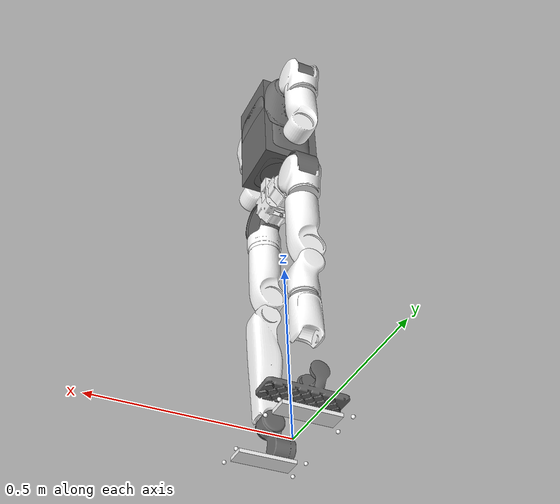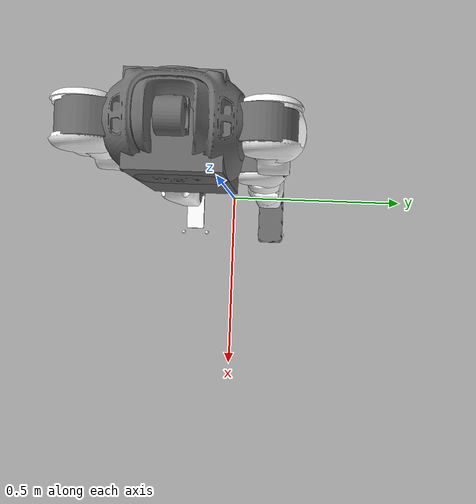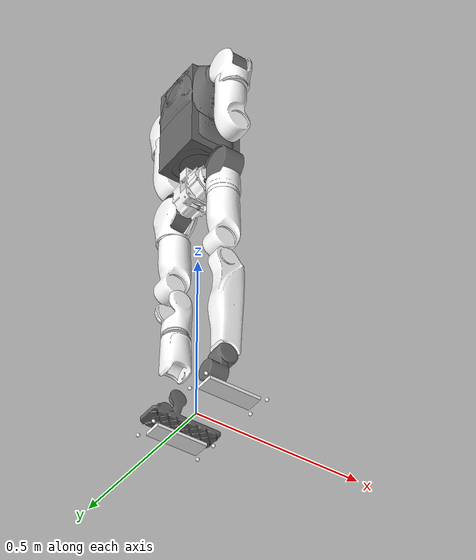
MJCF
<mujoco model="E1_12dof">
  <compiler angle="radian" meshdir="./meshes/"/>
  <statistic meansize="0.144785" extent="1.23314" center="0.025392 2.0634e-05 -0.245975"/>
  <default>
    <joint damping="0.1" armature="0.01" frictionloss="0.3"/>
  </default>
  <asset>
    <mesh name="pelvis" file="pelvis.STL"/>
    <mesh name="left_hip_pitch_link" file="left_hip_pitch_link.STL"/>
    <mesh name="left_hip_roll_link" file="left_hip_roll_link.STL"/>
    <mesh name="left_hip_yaw_link" file="left_hip_yaw_link.STL"/>
    <mesh name="left_knee_link" file="left_knee_link.STL"/>
    <mesh name="left_ankle_pitch_link" file="left_ankle_pitch_link.STL"/>
    <mesh name="right_hip_pitch_link" file="right_hip_pitch_link.STL"/>
    <mesh name="right_hip_roll_link" file="right_hip_roll_link.STL"/>
    <mesh name="right_hip_yaw_link" file="right_hip_yaw_link.STL"/>
    <mesh name="right_knee_link" file="right_knee_link.STL"/>
    <mesh name="right_ankle_pitch_link" file="right_ankle_pitch_link.STL"/>
    <mesh name="torso_link" file="torso_link.STL"/>
    <mesh name="left_shoulder_pitch_link" file="left_shoulder_pitch_link.STL"/>
    <mesh name="left_shoulder_roll_link" file="left_shoulder_roll_link.STL"/>
    <mesh name="left_shoulder_yaw_link" file="left_shoulder_yaw_link.STL"/>
    <mesh name="right_shoulder_pitch_link" file="right_shoulder_pitch_link.STL"/>
    <mesh name="right_shoulder_roll_link" file="right_shoulder_roll_link.STL"/>
    <mesh name="right_shoulder_yaw_link" file="right_shoulder_yaw_link.STL"/>
  </asset>

  <worldbody>
    <body name="pelvis" pos="0 0 0.754">
      <inertial pos="-0.000783647 -0.000908128 0.220941" quat="0.999977 0.00448128 -0.00502837 -6.11387e-05" mass="13.832" diaginertia="0.307113 0.203414 0.123242"/>
      <joint name="floating_base_joint" type="free" limited="false" actuatorfrclimited="false"/>
      <geom type="mesh" contype="0" conaffinity="0" group="1" density="0" rgba="1 1 1 1" mesh="pelvis"/>
      <geom type="mesh" rgba="1 1 1 1" mesh="pelvis"/>
      <geom pos="0 0 0.111" quat="1 0 0 0" type="mesh" contype="0" conaffinity="0" group="1" density="0" rgba="0.419608 0.419608 0.419608 1" mesh="torso_link"/>
      <geom size="0.08 0.08 0.15" pos="0 0 0.241" type="box" rgba="0.419608 0.419608 0.419608 1"/>
      <geom pos="0 0.095 0.35" quat="1 0 0 0" type="mesh" contype="0" conaffinity="0" group="1" density="0" rgba="0.419608 0.419608 0.419608 1" mesh="left_shoulder_pitch_link"/>
      <geom pos="0 0.15 0.35" quat="1 0 0 0" type="mesh" contype="0" conaffinity="0" group="1" density="0" rgba="1 1 1 1" mesh="left_shoulder_roll_link"/>
      <geom pos="0 0.15 0.299" quat="1 0 0 0" type="mesh" contype="0" conaffinity="0" group="1" density="0" rgba="1 1 1 1" mesh="left_shoulder_yaw_link"/>
      <geom pos="0 -0.095 0.35" quat="1 0 0 0" type="mesh" contype="0" conaffinity="0" group="1" density="0" rgba="0.419608 0.419608 0.419608 1" mesh="right_shoulder_pitch_link"/>
      <geom pos="0 -0.15 0.35" quat="1 0 0 0" type="mesh" contype="0" conaffinity="0" group="1" density="0" rgba="1 1 1 1" mesh="right_shoulder_roll_link"/>
      <geom pos="0 -0.15 0.299" quat="1 0 0 0" type="mesh" contype="0" conaffinity="0" group="1" density="0" rgba="1 1 1 1" mesh="right_shoulder_yaw_link"/>
      <site name="imu" pos="0 0 -0.06"/>
      <body name="left_hip_pitch_link" pos="0 0.0575 0">
        <inertial pos="0.0192954 0.0308444 -0.00578934" quat="0.596098 0.717966 0.34423 -0.103431" mass="0.145" diaginertia="0.000127162 0.000104737 3.89609e-05"/>
        <joint name="left_hip_pitch_joint" pos="0 0 0" axis="0 1 0" range="-2.7053 2.7053" actuatorfrcrange="-60 60"/>
        <geom type="mesh" contype="0" conaffinity="0" group="1" density="0" rgba="0.419608 0.419608 0.419608 1" mesh="left_hip_pitch_link"/>
        <body name="left_hip_roll_link" pos="0 0.0575 -0.015">
          <inertial pos="-0.00147244 0.00041537 -0.0372145" quat="0.99892 0.00322789 0.0298082 0.035486" mass="1.39" diaginertia="0.0025721 0.00235517 0.0014478"/>
          <joint name="left_hip_roll_joint" pos="0 0 0" axis="1 0 0" range="-0.1745 2.618" actuatorfrcrange="-36 36"/>
          <geom type="mesh" contype="0" conaffinity="0" group="1" density="0" rgba="1 1 1 1" mesh="left_hip_roll_link"/>
          <body name="left_hip_yaw_link" pos="0 0 -0.098">
            <inertial pos="0.00070152 0.00025365 -0.126147" quat="0.701604 0.0137633 0.00110639 0.712434" mass="2.39" diaginertia="0.0164698 0.0161258 0.00277234"/>
            <joint name="left_hip_yaw_joint" pos="0 0 0" axis="0 0 1" range="-2.4871 3.0107" actuatorfrcrange="-36 36"/>
            <geom type="mesh" contype="0" conaffinity="0" group="1" density="0" rgba="1 1 1 1" mesh="left_hip_yaw_link"/>
            <body name="left_knee_link" pos="0 0 -0.222">
              <inertial pos="0.00414084 -0.00040825 -0.133269" quat="0.71811 0.0034837 -0.00195689 0.695918" mass="1.408" diaginertia="0.0207885 0.0207451 0.00057952"/>
              <joint name="left_knee_joint" pos="0 0 0" axis="0 1 0" range="0 2.4435" actuatorfrcrange="-60 60"/>
              <geom type="mesh" contype="0" conaffinity="0" group="1" density="0" rgba="1 1 1 1" mesh="left_knee_link"/>
              <geom type="mesh" rgba="1 1 1 1" mesh="left_knee_link"/>
              <body name="left_ankle_pitch_link" pos="0 0 -0.32">
                <inertial pos="-0.0142672 -0.00101925 -0.0429843" quat="0.707107 0 0 0.707107" mass="0.597" diaginertia="0.00072568 0.00065314 0.00044755"/>
                <joint name="left_ankle_pitch_joint" pos="0 0 0" axis="0 1 0" range="-1.5708 1.5708" actuatorfrcrange="-60 60"/>
                <geom type="mesh" contype="0" conaffinity="0" group="1" density="0" rgba="0.419608 0.419608 0.419608 1" mesh="left_ankle_pitch_link"/>
                <body name="left_ankle_roll_link" pos="0 0 -0.06">
                  <inertial pos="0.0115206 0 -0.0294706" quat="0 0.693826 0 0.720142" mass="0.294" diaginertia="0.000794803 0.00074194 0.000149907"/>
                  <joint name="left_ankle_roll_joint" pos="0 0 0" axis="1 0 0" range="-1.5708 1.5708" actuatorfrcrange="-14 14"/>
                  <geom size="0.075 0.025 0.005" pos="0.02 0 -0.04" type="box" contype="0" conaffinity="0" group="1" density="0" rgba="1 1 1 1"/>
                  <geom size="0.005" pos="0.107 0.035 -0.045" rgba="1 1 1 1"/>
                  <geom size="0.005" pos="0.107 -0.035 -0.045" rgba="1 1 1 1"/>
                  <geom size="0.005" pos="-0.073 0.035 -0.045" rgba="1 1 1 1"/>
                  <geom size="0.005" pos="-0.073 -0.035 -0.045" rgba="1 1 1 1"/>
                </body>
              </body>
            </body>
          </body>
        </body>
      </body>
      <body name="right_hip_pitch_link" pos="0 -0.0575 0">
        <inertial pos="0.0192954 -0.0308444 -0.00578934" quat="0.717966 0.596098 0.103431 -0.34423" mass="0.145" diaginertia="0.000127162 0.000104737 3.89609e-05"/>
        <joint name="right_hip_pitch_joint" pos="0 0 0" axis="0 1 0" range="-2.7053 2.7053" actuatorfrcrange="-60 60"/>
        <geom type="mesh" contype="0" conaffinity="0" group="1" density="0" rgba="0.41961 0.41961 0.41961 1" mesh="right_hip_pitch_link"/>
        <body name="right_hip_roll_link" pos="0 -0.0575 -0.015">
          <inertial pos="-0.00147237 -0.00041532 -0.0372145" quat="0.99892 -0.00323341 0.0298083 -0.0354861" mass="1.39" diaginertia="0.00257209 0.00235517 0.0014478"/>
          <joint name="right_hip_roll_joint" pos="0 0 0" axis="1 0 0" range="-2.618 0.1745" actuatorfrcrange="-36 36"/>
          <geom type="mesh" contype="0" conaffinity="0" group="1" density="0" rgba="1 1 1 1" mesh="right_hip_roll_link"/>
          <body name="right_hip_yaw_link" pos="0 0 -0.098">
            <inertial pos="0.00070152 -0.00025365 -0.126147" quat="0.712423 0.00110658 0.0137633 0.701614" mass="2.39" diaginertia="0.0164698 0.0161258 0.00277233"/>
            <joint name="right_hip_yaw_joint" pos="0 0 0" axis="0 0 1" range="-3.0107 2.4871" actuatorfrcrange="-36 36"/>
            <geom type="mesh" contype="0" conaffinity="0" group="1" density="0" rgba="1 1 1 1" mesh="right_hip_yaw_link"/>
            <body name="right_knee_link" pos="0 0 -0.222">
              <inertial pos="0.00414085 0.00040825 -0.133269" quat="0.695918 -0.00195689 0.0034837 0.71811" mass="1.408" diaginertia="0.0207885 0.0207451 0.00057952"/>
              <joint name="right_knee_joint" pos="0 0 0" axis="0 1 0" range="0 2.4435" actuatorfrcrange="-60 60"/>
              <geom type="mesh" contype="0" conaffinity="0" group="1" density="0" rgba="1 1 1 1" mesh="right_knee_link"/>
              <geom type="mesh" rgba="1 1 1 1" mesh="right_knee_link"/>
              <body name="right_ankle_pitch_link" pos="0 0 -0.32">
                <inertial pos="-0.0142671 0.00101913 -0.0429843" quat="0.707107 0 0 0.707107" mass="0.597" diaginertia="0.00072569 0.00065314 0.00044755"/>
                <joint name="right_ankle_pitch_joint" pos="0 0 0" axis="0 1 0" range="-1.5708 1.5708" actuatorfrcrange="-60 60"/>
                <geom type="mesh" contype="0" conaffinity="0" group="1" density="0" rgba="0.419608 0.419608 0.419608 1" mesh="right_ankle_pitch_link"/>
                <body name="right_ankle_roll_link" pos="0 0 -0.06">
                  <inertial pos="0.0115206 0 -0.0294706" quat="0 0.693826 0 0.720142" mass="0.294" diaginertia="0.000794803 0.00074194 0.000149907"/>
                  <joint name="right_ankle_roll_joint" pos="0 0 0" axis="1 0 0" range="-1.5708 1.5708" actuatorfrcrange="-14 14"/>
                  <geom size="0.075 0.025 0.005" pos="0.02 0 -0.04" type="box" contype="0" conaffinity="0" group="1" density="0" rgba="1 1 1 1"/>
                  <geom size="0.005" pos="0.107 0.035 -0.045" rgba="1 1 1 1"/>
                  <geom size="0.005" pos="0.107 -0.035 -0.045" rgba="1 1 1 1"/>
                  <geom size="0.005" pos="-0.073 0.035 -0.045" rgba="1 1 1 1"/>
                  <geom size="0.005" pos="-0.073 -0.035 -0.045" rgba="1 1 1 1"/>
                </body>
              </body>
            </body>
          </body>
        </body>
      </body>
    </body>
  </worldbody>
    <actuator>
    <motor name="left_hip_pitch_joint"   joint="left_hip_pitch_joint"   /> <!-- Leg Left -->
    <motor name="left_hip_roll_joint"    joint="left_hip_roll_joint"    />
    <motor name="left_hip_yaw_joint"     joint="left_hip_yaw_joint"     />
    <motor name="left_knee_joint"        joint="left_knee_joint"  />
    <motor name="left_ankle_pitch_joint" joint="left_ankle_pitch_joint" />
    <motor name="left_ankle_roll_joint"  joint="left_ankle_roll_joint"  />

    <motor name="right_hip_pitch_joint"   joint="right_hip_pitch_joint"   /> <!-- Right Left -->
    <motor name="right_hip_roll_joint"    joint="right_hip_roll_joint"    />
    <motor name="right_hip_yaw_joint"     joint="right_hip_yaw_joint"     />
    <motor name="right_knee_joint"        joint="right_knee_joint"  />
    <motor name="right_ankle_pitch_joint" joint="right_ankle_pitch_joint" />
    <motor name="right_ankle_roll_joint"  joint="right_ankle_roll_joint"  />
  </actuator>
  <sensor>
    <!-- 身体的的姿态 -->
    <gyro          name="gyro"    site='imu' noise='0.005' cutoff='34.9'/>
    <accelerometer name="acc"     site='imu' noise='0.005' cutoff='157'/>
    <framequat     name='bq'      objtype='site' noise='0.001' objname='imu'/>
    <framelinvel   name="blv"  objtype='site' objname='imu'/>
  </sensor>
</mujoco>
